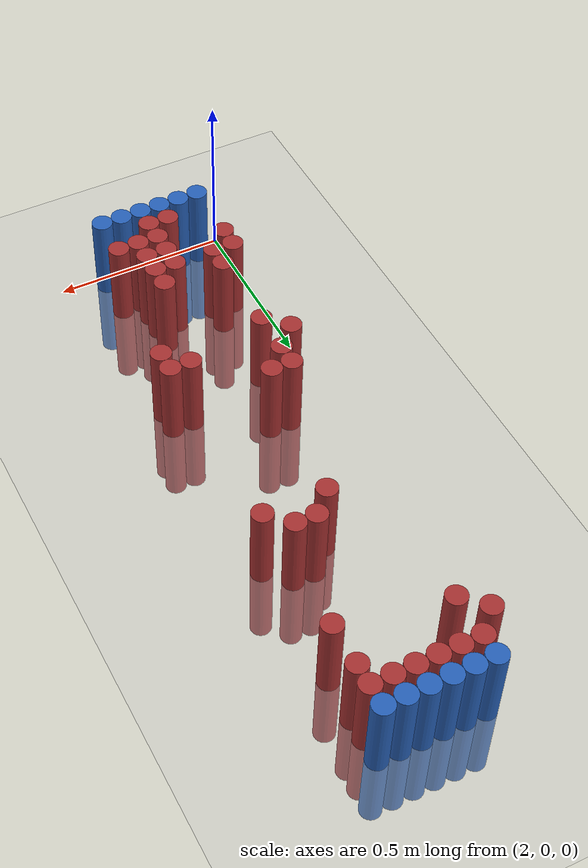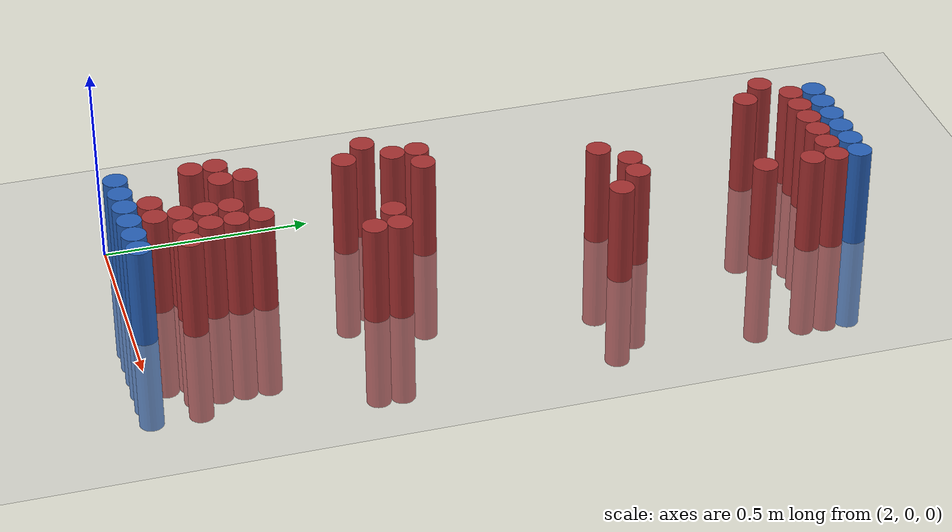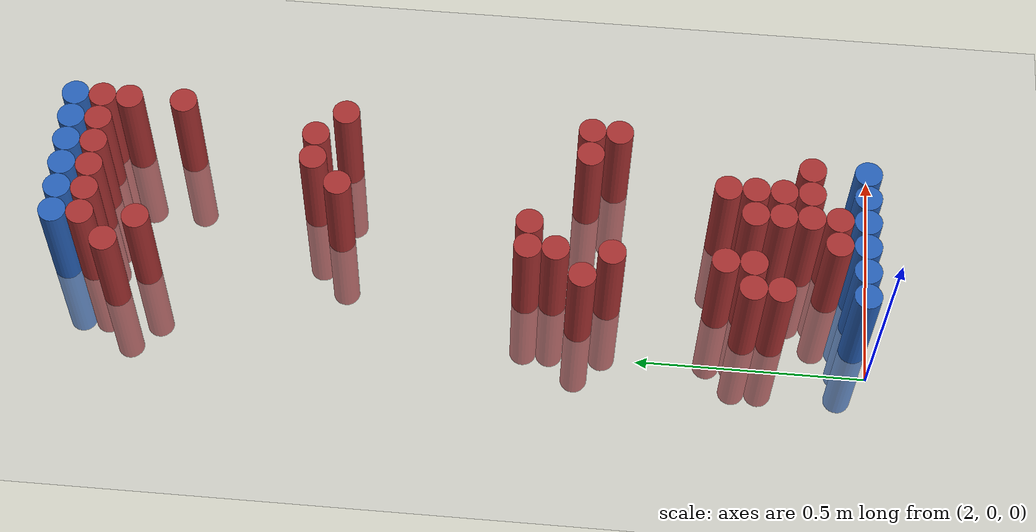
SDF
<sdf version="1.6">
 <world name="default">
  <model name="ground_plane">
   <static>1</static>
   <link name="link">
    <collision name="collision">
     <geometry><plane><normal>0 0 1</normal><size>100 100</size></plane></geometry>
     <surface><friction><ode><mu>100</mu><mu2>50</mu2></ode></friction></surface>
    </collision>
    <visual name="visual">
     <cast_shadows>0</cast_shadows>
     <geometry><plane><normal>0 0 1</normal><size>100 100</size></plane></geometry>
     <material>
      <script><uri>file://media/materials/scripts/gazebo.material</uri><name>Gazebo/Grey</name></script>
     </material>
    </visual>
   </link>
  </model>
  <model name="unit_cylinder_96">
   <static>1</static>
   <pose>2.130000 1.770000 0.000000 0.000000 0.000000 0.000000</pose>
   <link name="link">
    <inertial>
     <mass>1</mass>
     <inertia><ixx>0.145833</ixx><ixy>0</ixy><ixz>0</ixz><iyy>0.145833</iyy><iyz>0</iyz><izz>0.125</izz></inertia>
    </inertial>
    <collision name="collision">
     <geometry><cylinder><radius>0.030000</radius><length>0.5</length></cylinder></geometry>
    </collision>
    <visual name="visual">
     <geometry><cylinder><radius>0.030000</radius><length>0.5</length></cylinder></geometry>
     <material>
      <ambient>0.152000 0.379000 0.720000 1</ambient>
      <diffuse>0.152000 0.379000 0.720000 1</diffuse>
     </material>
     <material>
      <script><name>Gazebo/Grey</name><uri>file://media/materials/scripts/gazebo.material</uri></script>
     </material>
    </visual>
   </link>
  </model>
  <model name="unit_cylinder_97">
   <static>1</static>
   <pose>2.190000 1.770000 0.000000 0.000000 0.000000 0.000000</pose>
   <link name="link">
    <inertial>
     <mass>1</mass>
     <inertia><ixx>0.145833</ixx><ixy>0</ixy><ixz>0</ixz><iyy>0.145833</iyy><iyz>0</iyz><izz>0.125</izz></inertia>
    </inertial>
    <collision name="collision">
     <geometry><cylinder><radius>0.030000</radius><length>0.5</length></cylinder></geometry>
    </collision>
    <visual name="visual">
     <geometry><cylinder><radius>0.030000</radius><length>0.5</length></cylinder></geometry>
     <material>
      <ambient>0.152000 0.379000 0.720000 1</ambient>
      <diffuse>0.152000 0.379000 0.720000 1</diffuse>
     </material>
     <material>
      <script><name>Gazebo/Grey</name><uri>file://media/materials/scripts/gazebo.material</uri></script>
     </material>
    </visual>
   </link>
  </model>
  <model name="unit_cylinder_98">
   <static>1</static>
   <pose>2.250000 1.770000 0.000000 0.000000 0.000000 0.000000</pose>
   <link name="link">
    <inertial>
     <mass>1</mass>
     <inertia><ixx>0.145833</ixx><ixy>0</ixy><ixz>0</ixz><iyy>0.145833</iyy><iyz>0</iyz><izz>0.125</izz></inertia>
    </inertial>
    <collision name="collision">
     <geometry><cylinder><radius>0.030000</radius><length>0.5</length></cylinder></geometry>
    </collision>
    <visual name="visual">
     <geometry><cylinder><radius>0.030000</radius><length>0.5</length></cylinder></geometry>
     <material>
      <ambient>0.152000 0.379000 0.720000 1</ambient>
      <diffuse>0.152000 0.379000 0.720000 1</diffuse>
     </material>
     <material>
      <script><name>Gazebo/Grey</name><uri>file://media/materials/scripts/gazebo.material</uri></script>
     </material>
    </visual>
   </link>
  </model>
  <model name="unit_cylinder_99">
   <static>1</static>
   <pose>2.310000 1.770000 0.000000 0.000000 0.000000 0.000000</pose>
   <link name="link">
    <inertial>
     <mass>1</mass>
     <inertia><ixx>0.145833</ixx><ixy>0</ixy><ixz>0</ixz><iyy>0.145833</iyy><iyz>0</iyz><izz>0.125</izz></inertia>
    </inertial>
    <collision name="collision">
     <geometry><cylinder><radius>0.030000</radius><length>0.5</length></cylinder></geometry>
    </collision>
    <visual name="visual">
     <geometry><cylinder><radius>0.030000</radius><length>0.5</length></cylinder></geometry>
     <material>
      <ambient>0.152000 0.379000 0.720000 1</ambient>
      <diffuse>0.152000 0.379000 0.720000 1</diffuse>
     </material>
     <material>
      <script><name>Gazebo/Grey</name><uri>file://media/materials/scripts/gazebo.material</uri></script>
     </material>
    </visual>
   </link>
  </model>
  <model name="unit_cylinder_100">
   <static>1</static>
   <pose>2.370000 1.770000 0.000000 0.000000 0.000000 0.000000</pose>
   <link name="link">
    <inertial>
     <mass>1</mass>
     <inertia><ixx>0.145833</ixx><ixy>0</ixy><ixz>0</ixz><iyy>0.145833</iyy><iyz>0</iyz><izz>0.125</izz></inertia>
    </inertial>
    <collision name="collision">
     <geometry><cylinder><radius>0.030000</radius><length>0.5</length></cylinder></geometry>
    </collision>
    <visual name="visual">
     <geometry><cylinder><radius>0.030000</radius><length>0.5</length></cylinder></geometry>
     <material>
      <ambient>0.152000 0.379000 0.720000 1</ambient>
      <diffuse>0.152000 0.379000 0.720000 1</diffuse>
     </material>
     <material>
      <script><name>Gazebo/Grey</name><uri>file://media/materials/scripts/gazebo.material</uri></script>
     </material>
    </visual>
   </link>
  </model>
  <model name="unit_cylinder_101">
   <static>1</static>
   <pose>2.430000 1.770000 0.000000 0.000000 0.000000 0.000000</pose>
   <link name="link">
    <inertial>
     <mass>1</mass>
     <inertia><ixx>0.145833</ixx><ixy>0</ixy><ixz>0</ixz><iyy>0.145833</iyy><iyz>0</iyz><izz>0.125</izz></inertia>
    </inertial>
    <collision name="collision">
     <geometry><cylinder><radius>0.030000</radius><length>0.5</length></cylinder></geometry>
    </collision>
    <visual name="visual">
     <geometry><cylinder><radius>0.030000</radius><length>0.5</length></cylinder></geometry>
     <material>
      <ambient>0.152000 0.379000 0.720000 1</ambient>
      <diffuse>0.152000 0.379000 0.720000 1</diffuse>
     </material>
     <material>
      <script><name>Gazebo/Grey</name><uri>file://media/materials/scripts/gazebo.material</uri></script>
     </material>
    </visual>
   </link>
  </model>
  <model name="unit_cylinder_125">
   <static>1</static>
   <pose>2.130000 1.710000 0.000000 0.000000 0.000000 0.000000</pose>
   <link name="link">
    <inertial>
     <mass>1</mass>
     <inertia><ixx>0.145833</ixx><ixy>0</ixy><ixz>0</ixz><iyy>0.145833</iyy><iyz>0</iyz><izz>0.125</izz></inertia>
    </inertial>
    <collision name="collision">
     <geometry><cylinder><radius>0.030000</radius><length>0.5</length></cylinder></geometry>
    </collision>
    <visual name="visual">
     <geometry><cylinder><radius>0.030000</radius><length>0.5</length></cylinder></geometry>
     <material>
      <ambient>0.648000 0.192000 0.192000 1</ambient>
      <diffuse>0.648000 0.192000 0.192000 1</diffuse>
     </material>
     <material>
      <script><name>Gazebo/Grey</name><uri>file://media/materials/scripts/gazebo.material</uri></script>
     </material>
    </visual>
   </link>
  </model>
  <model name="unit_cylinder_126">
   <static>1</static>
   <pose>2.190000 1.710000 0.000000 0.000000 0.000000 0.000000</pose>
   <link name="link">
    <inertial>
     <mass>1</mass>
     <inertia><ixx>0.145833</ixx><ixy>0</ixy><ixz>0</ixz><iyy>0.145833</iyy><iyz>0</iyz><izz>0.125</izz></inertia>
    </inertial>
    <collision name="collision">
     <geometry><cylinder><radius>0.030000</radius><length>0.5</length></cylinder></geometry>
    </collision>
    <visual name="visual">
     <geometry><cylinder><radius>0.030000</radius><length>0.5</length></cylinder></geometry>
     <material>
      <ambient>0.648000 0.192000 0.192000 1</ambient>
      <diffuse>0.648000 0.192000 0.192000 1</diffuse>
     </material>
     <material>
      <script><name>Gazebo/Grey</name><uri>file://media/materials/scripts/gazebo.material</uri></script>
     </material>
    </visual>
   </link>
  </model>
  <model name="unit_cylinder_127">
   <static>1</static>
   <pose>2.250000 1.710000 0.000000 0.000000 0.000000 0.000000</pose>
   <link name="link">
    <inertial>
     <mass>1</mass>
     <inertia><ixx>0.145833</ixx><ixy>0</ixy><ixz>0</ixz><iyy>0.145833</iyy><iyz>0</iyz><izz>0.125</izz></inertia>
    </inertial>
    <collision name="collision">
     <geometry><cylinder><radius>0.030000</radius><length>0.5</length></cylinder></geometry>
    </collision>
    <visual name="visual">
     <geometry><cylinder><radius>0.030000</radius><length>0.5</length></cylinder></geometry>
     <material>
      <ambient>0.648000 0.192000 0.192000 1</ambient>
      <diffuse>0.648000 0.192000 0.192000 1</diffuse>
     </material>
     <material>
      <script><name>Gazebo/Grey</name><uri>file://media/materials/scripts/gazebo.material</uri></script>
     </material>
    </visual>
   </link>
  </model>
  <model name="unit_cylinder_128">
   <static>1</static>
   <pose>2.310000 1.710000 0.000000 0.000000 0.000000 0.000000</pose>
   <link name="link">
    <inertial>
     <mass>1</mass>
     <inertia><ixx>0.145833</ixx><ixy>0</ixy><ixz>0</ixz><iyy>0.145833</iyy><iyz>0</iyz><izz>0.125</izz></inertia>
    </inertial>
    <collision name="collision">
     <geometry><cylinder><radius>0.030000</radius><length>0.5</length></cylinder></geometry>
    </collision>
    <visual name="visual">
     <geometry><cylinder><radius>0.030000</radius><length>0.5</length></cylinder></geometry>
     <material>
      <ambient>0.648000 0.192000 0.192000 1</ambient>
      <diffuse>0.648000 0.192000 0.192000 1</diffuse>
     </material>
     <material>
      <script><name>Gazebo/Grey</name><uri>file://media/materials/scripts/gazebo.material</uri></script>
     </material>
    </visual>
   </link>
  </model>
  <model name="unit_cylinder_129">
   <static>1</static>
   <pose>2.370000 1.710000 0.000000 0.000000 0.000000 0.000000</pose>
   <link name="link">
    <inertial>
     <mass>1</mass>
     <inertia><ixx>0.145833</ixx><ixy>0</ixy><ixz>0</ixz><iyy>0.145833</iyy><iyz>0</iyz><izz>0.125</izz></inertia>
    </inertial>
    <collision name="collision">
     <geometry><cylinder><radius>0.030000</radius><length>0.5</length></cylinder></geometry>
    </collision>
    <visual name="visual">
     <geometry><cylinder><radius>0.030000</radius><length>0.5</length></cylinder></geometry>
     <material>
      <ambient>0.648000 0.192000 0.192000 1</ambient>
      <diffuse>0.648000 0.192000 0.192000 1</diffuse>
     </material>
     <material>
      <script><name>Gazebo/Grey</name><uri>file://media/materials/scripts/gazebo.material</uri></script>
     </material>
    </visual>
   </link>
  </model>
  <model name="unit_cylinder_130">
   <static>1</static>
   <pose>2.430000 1.710000 0.000000 0.000000 0.000000 0.000000</pose>
   <link name="link">
    <inertial>
     <mass>1</mass>
     <inertia><ixx>0.145833</ixx><ixy>0</ixy><ixz>0</ixz><iyy>0.145833</iyy><iyz>0</iyz><izz>0.125</izz></inertia>
    </inertial>
    <collision name="collision">
     <geometry><cylinder><radius>0.030000</radius><length>0.5</length></cylinder></geometry>
    </collision>
    <visual name="visual">
     <geometry><cylinder><radius>0.030000</radius><length>0.5</length></cylinder></geometry>
     <material>
      <ambient>0.648000 0.192000 0.192000 1</ambient>
      <diffuse>0.648000 0.192000 0.192000 1</diffuse>
     </material>
     <material>
      <script><name>Gazebo/Grey</name><uri>file://media/materials/scripts/gazebo.material</uri></script>
     </material>
    </visual>
   </link>
  </model>
  <model name="unit_cylinder_137">
   <static>1</static>
   <pose>2.070000 1.650000 0.000000 0.000000 0.000000 0.000000</pose>
   <link name="link">
    <inertial>
     <mass>1</mass>
     <inertia><ixx>0.145833</ixx><ixy>0</ixy><ixz>0</ixz><iyy>0.145833</iyy><iyz>0</iyz><izz>0.125</izz></inertia>
    </inertial>
    <collision name="collision">
     <geometry><cylinder><radius>0.030000</radius><length>0.5</length></cylinder></geometry>
    </collision>
    <visual name="visual">
     <geometry><cylinder><radius>0.030000</radius><length>0.5</length></cylinder></geometry>
     <material>
      <ambient>0.648000 0.192000 0.192000 1</ambient>
      <diffuse>0.648000 0.192000 0.192000 1</diffuse>
     </material>
     <material>
      <script><name>Gazebo/Grey</name><uri>file://media/materials/scripts/gazebo.material</uri></script>
     </material>
    </visual>
   </link>
  </model>
  <model name="unit_cylinder_138">
   <static>1</static>
   <pose>2.430000 1.650000 0.000000 0.000000 0.000000 0.000000</pose>
   <link name="link">
    <inertial>
     <mass>1</mass>
     <inertia><ixx>0.145833</ixx><ixy>0</ixy><ixz>0</ixz><iyy>0.145833</iyy><iyz>0</iyz><izz>0.125</izz></inertia>
    </inertial>
    <collision name="collision">
     <geometry><cylinder><radius>0.030000</radius><length>0.5</length></cylinder></geometry>
    </collision>
    <visual name="visual">
     <geometry><cylinder><radius>0.030000</radius><length>0.5</length></cylinder></geometry>
     <material>
      <ambient>0.648000 0.192000 0.192000 1</ambient>
      <diffuse>0.648000 0.192000 0.192000 1</diffuse>
     </material>
     <material>
      <script><name>Gazebo/Grey</name><uri>file://media/materials/scripts/gazebo.material</uri></script>
     </material>
    </visual>
   </link>
  </model>
  <model name="unit_cylinder_148">
   <static>1</static>
   <pose>2.130000 1.590000 0.000000 0.000000 0.000000 0.000000</pose>
   <link name="link">
    <inertial>
     <mass>1</mass>
     <inertia><ixx>0.145833</ixx><ixy>0</ixy><ixz>0</ixz><iyy>0.145833</iyy><iyz>0</iyz><izz>0.125</izz></inertia>
    </inertial>
    <collision name="collision">
     <geometry><cylinder><radius>0.030000</radius><length>0.5</length></cylinder></geometry>
    </collision>
    <visual name="visual">
     <geometry><cylinder><radius>0.030000</radius><length>0.5</length></cylinder></geometry>
     <material>
      <ambient>0.648000 0.192000 0.192000 1</ambient>
      <diffuse>0.648000 0.192000 0.192000 1</diffuse>
     </material>
     <material>
      <script><name>Gazebo/Grey</name><uri>file://media/materials/scripts/gazebo.material</uri></script>
     </material>
    </visual>
   </link>
  </model>
  <model name="unit_cylinder_159">
   <static>1</static>
   <pose>2.430000 1.530000 0.000000 0.000000 0.000000 0.000000</pose>
   <link name="link">
    <inertial>
     <mass>1</mass>
     <inertia><ixx>0.145833</ixx><ixy>0</ixy><ixz>0</ixz><iyy>0.145833</iyy><iyz>0</iyz><izz>0.125</izz></inertia>
    </inertial>
    <collision name="collision">
     <geometry><cylinder><radius>0.030000</radius><length>0.5</length></cylinder></geometry>
    </collision>
    <visual name="visual">
     <geometry><cylinder><radius>0.030000</radius><length>0.5</length></cylinder></geometry>
     <material>
      <ambient>0.648000 0.192000 0.192000 1</ambient>
      <diffuse>0.648000 0.192000 0.192000 1</diffuse>
     </material>
     <material>
      <script><name>Gazebo/Grey</name><uri>file://media/materials/scripts/gazebo.material</uri></script>
     </material>
    </visual>
   </link>
  </model>
  <model name="unit_cylinder_171">
   <static>1</static>
   <pose>2.310000 1.230000 0.000000 0.000000 0.000000 0.000000</pose>
   <link name="link">
    <inertial>
     <mass>1</mass>
     <inertia><ixx>0.145833</ixx><ixy>0</ixy><ixz>0</ixz><iyy>0.145833</iyy><iyz>0</iyz><izz>0.125</izz></inertia>
    </inertial>
    <collision name="collision">
     <geometry><cylinder><radius>0.030000</radius><length>0.5</length></cylinder></geometry>
    </collision>
    <visual name="visual">
     <geometry><cylinder><radius>0.030000</radius><length>0.5</length></cylinder></geometry>
     <material>
      <ambient>0.648000 0.192000 0.192000 1</ambient>
      <diffuse>0.648000 0.192000 0.192000 1</diffuse>
     </material>
     <material>
      <script><name>Gazebo/Grey</name><uri>file://media/materials/scripts/gazebo.material</uri></script>
     </material>
    </visual>
   </link>
  </model>
  <model name="unit_cylinder_172">
   <static>1</static>
   <pose>2.370000 1.230000 0.000000 0.000000 0.000000 0.000000</pose>
   <link name="link">
    <inertial>
     <mass>1</mass>
     <inertia><ixx>0.145833</ixx><ixy>0</ixy><ixz>0</ixz><iyy>0.145833</iyy><iyz>0</iyz><izz>0.125</izz></inertia>
    </inertial>
    <collision name="collision">
     <geometry><cylinder><radius>0.030000</radius><length>0.5</length></cylinder></geometry>
    </collision>
    <visual name="visual">
     <geometry><cylinder><radius>0.030000</radius><length>0.5</length></cylinder></geometry>
     <material>
      <ambient>0.648000 0.192000 0.192000 1</ambient>
      <diffuse>0.648000 0.192000 0.192000 1</diffuse>
     </material>
     <material>
      <script><name>Gazebo/Grey</name><uri>file://media/materials/scripts/gazebo.material</uri></script>
     </material>
    </visual>
   </link>
  </model>
  <model name="unit_cylinder_177">
   <static>1</static>
   <pose>2.250000 1.170000 0.000000 0.000000 0.000000 0.000000</pose>
   <link name="link">
    <inertial>
     <mass>1</mass>
     <inertia><ixx>0.145833</ixx><ixy>0</ixy><ixz>0</ixz><iyy>0.145833</iyy><iyz>0</iyz><izz>0.125</izz></inertia>
    </inertial>
    <collision name="collision">
     <geometry><cylinder><radius>0.030000</radius><length>0.5</length></cylinder></geometry>
    </collision>
    <visual name="visual">
     <geometry><cylinder><radius>0.030000</radius><length>0.5</length></cylinder></geometry>
     <material>
      <ambient>0.648000 0.192000 0.192000 1</ambient>
      <diffuse>0.648000 0.192000 0.192000 1</diffuse>
     </material>
     <material>
      <script><name>Gazebo/Grey</name><uri>file://media/materials/scripts/gazebo.material</uri></script>
     </material>
    </visual>
   </link>
  </model>
  <model name="unit_cylinder_178">
   <static>1</static>
   <pose>2.430000 1.170000 0.000000 0.000000 0.000000 0.000000</pose>
   <link name="link">
    <inertial>
     <mass>1</mass>
     <inertia><ixx>0.145833</ixx><ixy>0</ixy><ixz>0</ixz><iyy>0.145833</iyy><iyz>0</iyz><izz>0.125</izz></inertia>
    </inertial>
    <collision name="collision">
     <geometry><cylinder><radius>0.030000</radius><length>0.5</length></cylinder></geometry>
    </collision>
    <visual name="visual">
     <geometry><cylinder><radius>0.030000</radius><length>0.5</length></cylinder></geometry>
     <material>
      <ambient>0.648000 0.192000 0.192000 1</ambient>
      <diffuse>0.648000 0.192000 0.192000 1</diffuse>
     </material>
     <material>
      <script><name>Gazebo/Grey</name><uri>file://media/materials/scripts/gazebo.material</uri></script>
     </material>
    </visual>
   </link>
  </model>
  <model name="unit_cylinder_203">
   <static>1</static>
   <pose>2.130000 0.750000 0.000000 0.000000 0.000000 0.000000</pose>
   <link name="link">
    <inertial>
     <mass>1</mass>
     <inertia><ixx>0.145833</ixx><ixy>0</ixy><ixz>0</ixz><iyy>0.145833</iyy><iyz>0</iyz><izz>0.125</izz></inertia>
    </inertial>
    <collision name="collision">
     <geometry><cylinder><radius>0.030000</radius><length>0.5</length></cylinder></geometry>
    </collision>
    <visual name="visual">
     <geometry><cylinder><radius>0.030000</radius><length>0.5</length></cylinder></geometry>
     <material>
      <ambient>0.648000 0.192000 0.192000 1</ambient>
      <diffuse>0.648000 0.192000 0.192000 1</diffuse>
     </material>
     <material>
      <script><name>Gazebo/Grey</name><uri>file://media/materials/scripts/gazebo.material</uri></script>
     </material>
    </visual>
   </link>
  </model>
  <model name="unit_cylinder_204">
   <static>1</static>
   <pose>2.190000 0.750000 0.000000 0.000000 0.000000 0.000000</pose>
   <link name="link">
    <inertial>
     <mass>1</mass>
     <inertia><ixx>0.145833</ixx><ixy>0</ixy><ixz>0</ixz><iyy>0.145833</iyy><iyz>0</iyz><izz>0.125</izz></inertia>
    </inertial>
    <collision name="collision">
     <geometry><cylinder><radius>0.030000</radius><length>0.5</length></cylinder></geometry>
    </collision>
    <visual name="visual">
     <geometry><cylinder><radius>0.030000</radius><length>0.5</length></cylinder></geometry>
     <material>
      <ambient>0.648000 0.192000 0.192000 1</ambient>
      <diffuse>0.648000 0.192000 0.192000 1</diffuse>
     </material>
     <material>
      <script><name>Gazebo/Grey</name><uri>file://media/materials/scripts/gazebo.material</uri></script>
     </material>
    </visual>
   </link>
  </model>
  <model name="unit_cylinder_206">
   <static>1</static>
   <pose>2.130000 0.690000 0.000000 0.000000 0.000000 0.000000</pose>
   <link name="link">
    <inertial>
     <mass>1</mass>
     <inertia><ixx>0.145833</ixx><ixy>0</ixy><ixz>0</ixz><iyy>0.145833</iyy><iyz>0</iyz><izz>0.125</izz></inertia>
    </inertial>
    <collision name="collision">
     <geometry><cylinder><radius>0.030000</radius><length>0.5</length></cylinder></geometry>
    </collision>
    <visual name="visual">
     <geometry><cylinder><radius>0.030000</radius><length>0.5</length></cylinder></geometry>
     <material>
      <ambient>0.648000 0.192000 0.192000 1</ambient>
      <diffuse>0.648000 0.192000 0.192000 1</diffuse>
     </material>
     <material>
      <script><name>Gazebo/Grey</name><uri>file://media/materials/scripts/gazebo.material</uri></script>
     </material>
    </visual>
   </link>
  </model>
  <model name="unit_cylinder_207">
   <static>1</static>
   <pose>2.070000 0.630000 0.000000 0.000000 0.000000 0.000000</pose>
   <link name="link">
    <inertial>
     <mass>1</mass>
     <inertia><ixx>0.145833</ixx><ixy>0</ixy><ixz>0</ixz><iyy>0.145833</iyy><iyz>0</iyz><izz>0.125</izz></inertia>
    </inertial>
    <collision name="collision">
     <geometry><cylinder><radius>0.030000</radius><length>0.5</length></cylinder></geometry>
    </collision>
    <visual name="visual">
     <geometry><cylinder><radius>0.030000</radius><length>0.5</length></cylinder></geometry>
     <material>
      <ambient>0.648000 0.192000 0.192000 1</ambient>
      <diffuse>0.648000 0.192000 0.192000 1</diffuse>
     </material>
     <material>
      <script><name>Gazebo/Grey</name><uri>file://media/materials/scripts/gazebo.material</uri></script>
     </material>
    </visual>
   </link>
  </model>
  <model name="unit_cylinder_208">
   <static>1</static>
   <pose>2.370000 0.630000 0.000000 0.000000 0.000000 0.000000</pose>
   <link name="link">
    <inertial>
     <mass>1</mass>
     <inertia><ixx>0.145833</ixx><ixy>0</ixy><ixz>0</ixz><iyy>0.145833</iyy><iyz>0</iyz><izz>0.125</izz></inertia>
    </inertial>
    <collision name="collision">
     <geometry><cylinder><radius>0.030000</radius><length>0.5</length></cylinder></geometry>
    </collision>
    <visual name="visual">
     <geometry><cylinder><radius>0.030000</radius><length>0.5</length></cylinder></geometry>
     <material>
      <ambient>0.648000 0.192000 0.192000 1</ambient>
      <diffuse>0.648000 0.192000 0.192000 1</diffuse>
     </material>
     <material>
      <script><name>Gazebo/Grey</name><uri>file://media/materials/scripts/gazebo.material</uri></script>
     </material>
    </visual>
   </link>
  </model>
  <model name="unit_cylinder_209">
   <static>1</static>
   <pose>2.430000 0.630000 0.000000 0.000000 0.000000 0.000000</pose>
   <link name="link">
    <inertial>
     <mass>1</mass>
     <inertia><ixx>0.145833</ixx><ixy>0</ixy><ixz>0</ixz><iyy>0.145833</iyy><iyz>0</iyz><izz>0.125</izz></inertia>
    </inertial>
    <collision name="collision">
     <geometry><cylinder><radius>0.030000</radius><length>0.5</length></cylinder></geometry>
    </collision>
    <visual name="visual">
     <geometry><cylinder><radius>0.030000</radius><length>0.5</length></cylinder></geometry>
     <material>
      <ambient>0.648000 0.192000 0.192000 1</ambient>
      <diffuse>0.648000 0.192000 0.192000 1</diffuse>
     </material>
     <material>
      <script><name>Gazebo/Grey</name><uri>file://media/materials/scripts/gazebo.material</uri></script>
     </material>
    </visual>
   </link>
  </model>
  <model name="unit_cylinder_210">
   <static>1</static>
   <pose>2.130000 0.570000 0.000000 0.000000 0.000000 0.000000</pose>
   <link name="link">
    <inertial>
     <mass>1</mass>
     <inertia><ixx>0.145833</ixx><ixy>0</ixy><ixz>0</ixz><iyy>0.145833</iyy><iyz>0</iyz><izz>0.125</izz></inertia>
    </inertial>
    <collision name="collision">
     <geometry><cylinder><radius>0.030000</radius><length>0.5</length></cylinder></geometry>
    </collision>
    <visual name="visual">
     <geometry><cylinder><radius>0.030000</radius><length>0.5</length></cylinder></geometry>
     <material>
      <ambient>0.648000 0.192000 0.192000 1</ambient>
      <diffuse>0.648000 0.192000 0.192000 1</diffuse>
     </material>
     <material>
      <script><name>Gazebo/Grey</name><uri>file://media/materials/scripts/gazebo.material</uri></script>
     </material>
    </visual>
   </link>
  </model>
  <model name="unit_cylinder_211">
   <static>1</static>
   <pose>2.430000 0.570000 0.000000 0.000000 0.000000 0.000000</pose>
   <link name="link">
    <inertial>
     <mass>1</mass>
     <inertia><ixx>0.145833</ixx><ixy>0</ixy><ixz>0</ixz><iyy>0.145833</iyy><iyz>0</iyz><izz>0.125</izz></inertia>
    </inertial>
    <collision name="collision">
     <geometry><cylinder><radius>0.030000</radius><length>0.5</length></cylinder></geometry>
    </collision>
    <visual name="visual">
     <geometry><cylinder><radius>0.030000</radius><length>0.5</length></cylinder></geometry>
     <material>
      <ambient>0.648000 0.192000 0.192000 1</ambient>
      <diffuse>0.648000 0.192000 0.192000 1</diffuse>
     </material>
     <material>
      <script><name>Gazebo/Grey</name><uri>file://media/materials/scripts/gazebo.material</uri></script>
     </material>
    </visual>
   </link>
  </model>
  <model name="unit_cylinder_221">
   <static>1</static>
   <pose>2.130000 0.330000 0.000000 0.000000 0.000000 0.000000</pose>
   <link name="link">
    <inertial>
     <mass>1</mass>
     <inertia><ixx>0.145833</ixx><ixy>0</ixy><ixz>0</ixz><iyy>0.145833</iyy><iyz>0</iyz><izz>0.125</izz></inertia>
    </inertial>
    <collision name="collision">
     <geometry><cylinder><radius>0.030000</radius><length>0.5</length></cylinder></geometry>
    </collision>
    <visual name="visual">
     <geometry><cylinder><radius>0.030000</radius><length>0.5</length></cylinder></geometry>
     <material>
      <ambient>0.648000 0.192000 0.192000 1</ambient>
      <diffuse>0.648000 0.192000 0.192000 1</diffuse>
     </material>
     <material>
      <script><name>Gazebo/Grey</name><uri>file://media/materials/scripts/gazebo.material</uri></script>
     </material>
    </visual>
   </link>
  </model>
  <model name="unit_cylinder_222">
   <static>1</static>
   <pose>2.310000 0.330000 0.000000 0.000000 0.000000 0.000000</pose>
   <link name="link">
    <inertial>
     <mass>1</mass>
     <inertia><ixx>0.145833</ixx><ixy>0</ixy><ixz>0</ixz><iyy>0.145833</iyy><iyz>0</iyz><izz>0.125</izz></inertia>
    </inertial>
    <collision name="collision">
     <geometry><cylinder><radius>0.030000</radius><length>0.5</length></cylinder></geometry>
    </collision>
    <visual name="visual">
     <geometry><cylinder><radius>0.030000</radius><length>0.5</length></cylinder></geometry>
     <material>
      <ambient>0.648000 0.192000 0.192000 1</ambient>
      <diffuse>0.648000 0.192000 0.192000 1</diffuse>
     </material>
     <material>
      <script><name>Gazebo/Grey</name><uri>file://media/materials/scripts/gazebo.material</uri></script>
     </material>
    </visual>
   </link>
  </model>
  <model name="unit_cylinder_223">
   <static>1</static>
   <pose>2.070000 0.270000 0.000000 0.000000 0.000000 0.000000</pose>
   <link name="link">
    <inertial>
     <mass>1</mass>
     <inertia><ixx>0.145833</ixx><ixy>0</ixy><ixz>0</ixz><iyy>0.145833</iyy><iyz>0</iyz><izz>0.125</izz></inertia>
    </inertial>
    <collision name="collision">
     <geometry><cylinder><radius>0.030000</radius><length>0.5</length></cylinder></geometry>
    </collision>
    <visual name="visual">
     <geometry><cylinder><radius>0.030000</radius><length>0.5</length></cylinder></geometry>
     <material>
      <ambient>0.648000 0.192000 0.192000 1</ambient>
      <diffuse>0.648000 0.192000 0.192000 1</diffuse>
     </material>
     <material>
      <script><name>Gazebo/Grey</name><uri>file://media/materials/scripts/gazebo.material</uri></script>
     </material>
    </visual>
   </link>
  </model>
  <model name="unit_cylinder_224">
   <static>1</static>
   <pose>2.130000 0.270000 0.000000 0.000000 0.000000 0.000000</pose>
   <link name="link">
    <inertial>
     <mass>1</mass>
     <inertia><ixx>0.145833</ixx><ixy>0</ixy><ixz>0</ixz><iyy>0.145833</iyy><iyz>0</iyz><izz>0.125</izz></inertia>
    </inertial>
    <collision name="collision">
     <geometry><cylinder><radius>0.030000</radius><length>0.5</length></cylinder></geometry>
    </collision>
    <visual name="visual">
     <geometry><cylinder><radius>0.030000</radius><length>0.5</length></cylinder></geometry>
     <material>
      <ambient>0.648000 0.192000 0.192000 1</ambient>
      <diffuse>0.648000 0.192000 0.192000 1</diffuse>
     </material>
     <material>
      <script><name>Gazebo/Grey</name><uri>file://media/materials/scripts/gazebo.material</uri></script>
     </material>
    </visual>
   </link>
  </model>
  <model name="unit_cylinder_225">
   <static>1</static>
   <pose>2.250000 0.270000 0.000000 0.000000 0.000000 0.000000</pose>
   <link name="link">
    <inertial>
     <mass>1</mass>
     <inertia><ixx>0.145833</ixx><ixy>0</ixy><ixz>0</ixz><iyy>0.145833</iyy><iyz>0</iyz><izz>0.125</izz></inertia>
    </inertial>
    <collision name="collision">
     <geometry><cylinder><radius>0.030000</radius><length>0.5</length></cylinder></geometry>
    </collision>
    <visual name="visual">
     <geometry><cylinder><radius>0.030000</radius><length>0.5</length></cylinder></geometry>
     <material>
      <ambient>0.648000 0.192000 0.192000 1</ambient>
      <diffuse>0.648000 0.192000 0.192000 1</diffuse>
     </material>
     <material>
      <script><name>Gazebo/Grey</name><uri>file://media/materials/scripts/gazebo.material</uri></script>
     </material>
    </visual>
   </link>
  </model>
  <model name="unit_cylinder_226">
   <static>1</static>
   <pose>2.310000 0.270000 0.000000 0.000000 0.000000 0.000000</pose>
   <link name="link">
    <inertial>
     <mass>1</mass>
     <inertia><ixx>0.145833</ixx><ixy>0</ixy><ixz>0</ixz><iyy>0.145833</iyy><iyz>0</iyz><izz>0.125</izz></inertia>
    </inertial>
    <collision name="collision">
     <geometry><cylinder><radius>0.030000</radius><length>0.5</length></cylinder></geometry>
    </collision>
    <visual name="visual">
     <geometry><cylinder><radius>0.030000</radius><length>0.5</length></cylinder></geometry>
     <material>
      <ambient>0.648000 0.192000 0.192000 1</ambient>
      <diffuse>0.648000 0.192000 0.192000 1</diffuse>
     </material>
     <material>
      <script><name>Gazebo/Grey</name><uri>file://media/materials/scripts/gazebo.material</uri></script>
     </material>
    </visual>
   </link>
  </model>
  <model name="unit_cylinder_227">
   <static>1</static>
   <pose>2.070000 0.210000 0.000000 0.000000 0.000000 0.000000</pose>
   <link name="link">
    <inertial>
     <mass>1</mass>
     <inertia><ixx>0.145833</ixx><ixy>0</ixy><ixz>0</ixz><iyy>0.145833</iyy><iyz>0</iyz><izz>0.125</izz></inertia>
    </inertial>
    <collision name="collision">
     <geometry><cylinder><radius>0.030000</radius><length>0.5</length></cylinder></geometry>
    </collision>
    <visual name="visual">
     <geometry><cylinder><radius>0.030000</radius><length>0.5</length></cylinder></geometry>
     <material>
      <ambient>0.648000 0.192000 0.192000 1</ambient>
      <diffuse>0.648000 0.192000 0.192000 1</diffuse>
     </material>
     <material>
      <script><name>Gazebo/Grey</name><uri>file://media/materials/scripts/gazebo.material</uri></script>
     </material>
    </visual>
   </link>
  </model>
  <model name="unit_cylinder_228">
   <static>1</static>
   <pose>2.250000 0.210000 0.000000 0.000000 0.000000 0.000000</pose>
   <link name="link">
    <inertial>
     <mass>1</mass>
     <inertia><ixx>0.145833</ixx><ixy>0</ixy><ixz>0</ixz><iyy>0.145833</iyy><iyz>0</iyz><izz>0.125</izz></inertia>
    </inertial>
    <collision name="collision">
     <geometry><cylinder><radius>0.030000</radius><length>0.5</length></cylinder></geometry>
    </collision>
    <visual name="visual">
     <geometry><cylinder><radius>0.030000</radius><length>0.5</length></cylinder></geometry>
     <material>
      <ambient>0.648000 0.192000 0.192000 1</ambient>
      <diffuse>0.648000 0.192000 0.192000 1</diffuse>
     </material>
     <material>
      <script><name>Gazebo/Grey</name><uri>file://media/materials/scripts/gazebo.material</uri></script>
     </material>
    </visual>
   </link>
  </model>
  <model name="unit_cylinder_229">
   <static>1</static>
   <pose>2.310000 0.210000 0.000000 0.000000 0.000000 0.000000</pose>
   <link name="link">
    <inertial>
     <mass>1</mass>
     <inertia><ixx>0.145833</ixx><ixy>0</ixy><ixz>0</ixz><iyy>0.145833</iyy><iyz>0</iyz><izz>0.125</izz></inertia>
    </inertial>
    <collision name="collision">
     <geometry><cylinder><radius>0.030000</radius><length>0.5</length></cylinder></geometry>
    </collision>
    <visual name="visual">
     <geometry><cylinder><radius>0.030000</radius><length>0.5</length></cylinder></geometry>
     <material>
      <ambient>0.648000 0.192000 0.192000 1</ambient>
      <diffuse>0.648000 0.192000 0.192000 1</diffuse>
     </material>
     <material>
      <script><name>Gazebo/Grey</name><uri>file://media/materials/scripts/gazebo.material</uri></script>
     </material>
    </visual>
   </link>
  </model>
  <model name="unit_cylinder_230">
   <static>1</static>
   <pose>2.250000 0.150000 0.000000 0.000000 0.000000 0.000000</pose>
   <link name="link">
    <inertial>
     <mass>1</mass>
     <inertia><ixx>0.145833</ixx><ixy>0</ixy><ixz>0</ixz><iyy>0.145833</iyy><iyz>0</iyz><izz>0.125</izz></inertia>
    </inertial>
    <collision name="collision">
     <geometry><cylinder><radius>0.030000</radius><length>0.5</length></cylinder></geometry>
    </collision>
    <visual name="visual">
     <geometry><cylinder><radius>0.030000</radius><length>0.5</length></cylinder></geometry>
     <material>
      <ambient>0.648000 0.192000 0.192000 1</ambient>
      <diffuse>0.648000 0.192000 0.192000 1</diffuse>
     </material>
     <material>
      <script><name>Gazebo/Grey</name><uri>file://media/materials/scripts/gazebo.material</uri></script>
     </material>
    </visual>
   </link>
  </model>
  <model name="unit_cylinder_231">
   <static>1</static>
   <pose>2.310000 0.150000 0.000000 0.000000 0.000000 0.000000</pose>
   <link name="link">
    <inertial>
     <mass>1</mass>
     <inertia><ixx>0.145833</ixx><ixy>0</ixy><ixz>0</ixz><iyy>0.145833</iyy><iyz>0</iyz><izz>0.125</izz></inertia>
    </inertial>
    <collision name="collision">
     <geometry><cylinder><radius>0.030000</radius><length>0.5</length></cylinder></geometry>
    </collision>
    <visual name="visual">
     <geometry><cylinder><radius>0.030000</radius><length>0.5</length></cylinder></geometry>
     <material>
      <ambient>0.648000 0.192000 0.192000 1</ambient>
      <diffuse>0.648000 0.192000 0.192000 1</diffuse>
     </material>
     <material>
      <script><name>Gazebo/Grey</name><uri>file://media/materials/scripts/gazebo.material</uri></script>
     </material>
    </visual>
   </link>
  </model>
  <model name="unit_cylinder_232">
   <static>1</static>
   <pose>2.370000 0.150000 0.000000 0.000000 0.000000 0.000000</pose>
   <link name="link">
    <inertial>
     <mass>1</mass>
     <inertia><ixx>0.145833</ixx><ixy>0</ixy><ixz>0</ixz><iyy>0.145833</iyy><iyz>0</iyz><izz>0.125</izz></inertia>
    </inertial>
    <collision name="collision">
     <geometry><cylinder><radius>0.030000</radius><length>0.5</length></cylinder></geometry>
    </collision>
    <visual name="visual">
     <geometry><cylinder><radius>0.030000</radius><length>0.5</length></cylinder></geometry>
     <material>
      <ambient>0.648000 0.192000 0.192000 1</ambient>
      <diffuse>0.648000 0.192000 0.192000 1</diffuse>
     </material>
     <material>
      <script><name>Gazebo/Grey</name><uri>file://media/materials/scripts/gazebo.material</uri></script>
     </material>
    </visual>
   </link>
  </model>
  <model name="unit_cylinder_240">
   <static>1</static>
   <pose>2.190000 0.090000 0.000000 0.000000 0.000000 0.000000</pose>
   <link name="link">
    <inertial>
     <mass>1</mass>
     <inertia><ixx>0.145833</ixx><ixy>0</ixy><ixz>0</ixz><iyy>0.145833</iyy><iyz>0</iyz><izz>0.125</izz></inertia>
    </inertial>
    <collision name="collision">
     <geometry><cylinder><radius>0.030000</radius><length>0.5</length></cylinder></geometry>
    </collision>
    <visual name="visual">
     <geometry><cylinder><radius>0.030000</radius><length>0.5</length></cylinder></geometry>
     <material>
      <ambient>0.648000 0.192000 0.192000 1</ambient>
      <diffuse>0.648000 0.192000 0.192000 1</diffuse>
     </material>
     <material>
      <script><name>Gazebo/Grey</name><uri>file://media/materials/scripts/gazebo.material</uri></script>
     </material>
    </visual>
   </link>
  </model>
  <model name="unit_cylinder_241">
   <static>1</static>
   <pose>2.250000 0.090000 0.000000 0.000000 0.000000 0.000000</pose>
   <link name="link">
    <inertial>
     <mass>1</mass>
     <inertia><ixx>0.145833</ixx><ixy>0</ixy><ixz>0</ixz><iyy>0.145833</iyy><iyz>0</iyz><izz>0.125</izz></inertia>
    </inertial>
    <collision name="collision">
     <geometry><cylinder><radius>0.030000</radius><length>0.5</length></cylinder></geometry>
    </collision>
    <visual name="visual">
     <geometry><cylinder><radius>0.030000</radius><length>0.5</length></cylinder></geometry>
     <material>
      <ambient>0.648000 0.192000 0.192000 1</ambient>
      <diffuse>0.648000 0.192000 0.192000 1</diffuse>
     </material>
     <material>
      <script><name>Gazebo/Grey</name><uri>file://media/materials/scripts/gazebo.material</uri></script>
     </material>
    </visual>
   </link>
  </model>
  <model name="unit_cylinder_257">
   <static>1</static>
   <pose>2.070000 0.030000 0.000000 0.000000 0.000000 0.000000</pose>
   <link name="link">
    <inertial>
     <mass>1</mass>
     <inertia><ixx>0.145833</ixx><ixy>0</ixy><ixz>0</ixz><iyy>0.145833</iyy><iyz>0</iyz><izz>0.125</izz></inertia>
    </inertial>
    <collision name="collision">
     <geometry><cylinder><radius>0.030000</radius><length>0.5</length></cylinder></geometry>
    </collision>
    <visual name="visual">
     <geometry><cylinder><radius>0.030000</radius><length>0.5</length></cylinder></geometry>
     <material>
      <ambient>0.152000 0.379000 0.720000 1</ambient>
      <diffuse>0.152000 0.379000 0.720000 1</diffuse>
     </material>
     <material>
      <script><name>Gazebo/Grey</name><uri>file://media/materials/scripts/gazebo.material</uri></script>
     </material>
    </visual>
   </link>
  </model>
  <model name="unit_cylinder_258">
   <static>1</static>
   <pose>2.130000 0.030000 0.000000 0.000000 0.000000 0.000000</pose>
   <link name="link">
    <inertial>
     <mass>1</mass>
     <inertia><ixx>0.145833</ixx><ixy>0</ixy><ixz>0</ixz><iyy>0.145833</iyy><iyz>0</iyz><izz>0.125</izz></inertia>
    </inertial>
    <collision name="collision">
     <geometry><cylinder><radius>0.030000</radius><length>0.5</length></cylinder></geometry>
    </collision>
    <visual name="visual">
     <geometry><cylinder><radius>0.030000</radius><length>0.5</length></cylinder></geometry>
     <material>
      <ambient>0.152000 0.379000 0.720000 1</ambient>
      <diffuse>0.152000 0.379000 0.720000 1</diffuse>
     </material>
     <material>
      <script><name>Gazebo/Grey</name><uri>file://media/materials/scripts/gazebo.material</uri></script>
     </material>
    </visual>
   </link>
  </model>
  <model name="unit_cylinder_259">
   <static>1</static>
   <pose>2.190000 0.030000 0.000000 0.000000 0.000000 0.000000</pose>
   <link name="link">
    <inertial>
     <mass>1</mass>
     <inertia><ixx>0.145833</ixx><ixy>0</ixy><ixz>0</ixz><iyy>0.145833</iyy><iyz>0</iyz><izz>0.125</izz></inertia>
    </inertial>
    <collision name="collision">
     <geometry><cylinder><radius>0.030000</radius><length>0.5</length></cylinder></geometry>
    </collision>
    <visual name="visual">
     <geometry><cylinder><radius>0.030000</radius><length>0.5</length></cylinder></geometry>
     <material>
      <ambient>0.152000 0.379000 0.720000 1</ambient>
      <diffuse>0.152000 0.379000 0.720000 1</diffuse>
     </material>
     <material>
      <script><name>Gazebo/Grey</name><uri>file://media/materials/scripts/gazebo.material</uri></script>
     </material>
    </visual>
   </link>
  </model>
  <model name="unit_cylinder_260">
   <static>1</static>
   <pose>2.250000 0.030000 0.000000 0.000000 0.000000 0.000000</pose>
   <link name="link">
    <inertial>
     <mass>1</mass>
     <inertia><ixx>0.145833</ixx><ixy>0</ixy><ixz>0</ixz><iyy>0.145833</iyy><iyz>0</iyz><izz>0.125</izz></inertia>
    </inertial>
    <collision name="collision">
     <geometry><cylinder><radius>0.030000</radius><length>0.5</length></cylinder></geometry>
    </collision>
    <visual name="visual">
     <geometry><cylinder><radius>0.030000</radius><length>0.5</length></cylinder></geometry>
     <material>
      <ambient>0.152000 0.379000 0.720000 1</ambient>
      <diffuse>0.152000 0.379000 0.720000 1</diffuse>
     </material>
     <material>
      <script><name>Gazebo/Grey</name><uri>file://media/materials/scripts/gazebo.material</uri></script>
     </material>
    </visual>
   </link>
  </model>
  <model name="unit_cylinder_261">
   <static>1</static>
   <pose>2.310000 0.030000 0.000000 0.000000 0.000000 0.000000</pose>
   <link name="link">
    <inertial>
     <mass>1</mass>
     <inertia><ixx>0.145833</ixx><ixy>0</ixy><ixz>0</ixz><iyy>0.145833</iyy><iyz>0</iyz><izz>0.125</izz></inertia>
    </inertial>
    <collision name="collision">
     <geometry><cylinder><radius>0.030000</radius><length>0.5</length></cylinder></geometry>
    </collision>
    <visual name="visual">
     <geometry><cylinder><radius>0.030000</radius><length>0.5</length></cylinder></geometry>
     <material>
      <ambient>0.152000 0.379000 0.720000 1</ambient>
      <diffuse>0.152000 0.379000 0.720000 1</diffuse>
     </material>
     <material>
      <script><name>Gazebo/Grey</name><uri>file://media/materials/scripts/gazebo.material</uri></script>
     </material>
    </visual>
   </link>
  </model>
  <model name="unit_cylinder_262">
   <static>1</static>
   <pose>2.370000 0.030000 0.000000 0.000000 0.000000 0.000000</pose>
   <link name="link">
    <inertial>
     <mass>1</mass>
     <inertia><ixx>0.145833</ixx><ixy>0</ixy><ixz>0</ixz><iyy>0.145833</iyy><iyz>0</iyz><izz>0.125</izz></inertia>
    </inertial>
    <collision name="collision">
     <geometry><cylinder><radius>0.030000</radius><length>0.5</length></cylinder></geometry>
    </collision>
    <visual name="visual">
     <geometry><cylinder><radius>0.030000</radius><length>0.5</length></cylinder></geometry>
     <material>
      <ambient>0.152000 0.379000 0.720000 1</ambient>
      <diffuse>0.152000 0.379000 0.720000 1</diffuse>
     </material>
     <material>
      <script><name>Gazebo/Grey</name><uri>file://media/materials/scripts/gazebo.material</uri></script>
     </material>
    </visual>
   </link>
  </model>
 </world>
</sdf>
